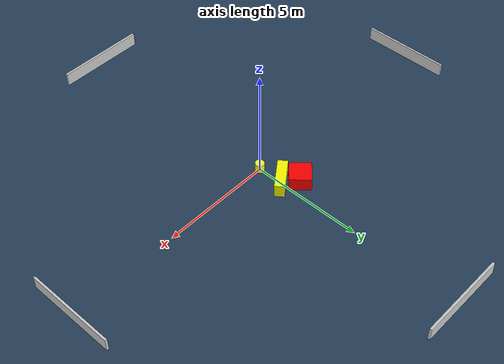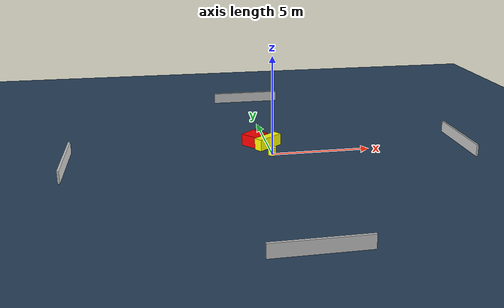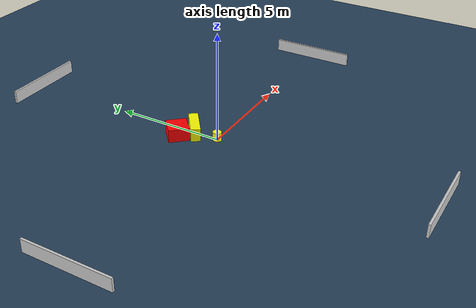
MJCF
<?xml version="1.0" ?>
<mujoco model="generated_environment">
  <option timestep="0.01" integrator="RK4" cone="elliptic"/>
  <default>
    <geom density="1"/>
  </default>
  <asset>
    <texture builtin="gradient" height="3072" name="skybox" rgb1="0.3 0.5 0.7" rgb2="0 0 0" type="skybox" width="512"/>
    <texture builtin="checker" height="300" name="groundplane" rgb1="0.2 0.3 0.4" rgb2="0.1 0.2 0.3" type="2d" width="300"/>
    <material name="groundplane" reflectance="0.2" texrepeat="5 5" texture="groundplane"/>
  </asset>
  <worldbody>
    <light dir="0 0 -1" directional="true" pos="0 0 1.5"/>
    <geom condim="3" friction="0.5 0.005 0.001" material="groundplane" name="floor" pos="0 0 0" size="0 0 0.05" type="plane"/>
    <body name="walls">
      <geom name="wall_1" condim="4" pos="-10.0 0.0 0.3" rgba="0.800000011920929 0.800000011920929 0.800000011920929 1.0" size="0.05 2.0 0.3" type="box"/>
      <geom name="wall_2" condim="4" pos="10.0 0.0 0.3" rgba="0.800000011920929 0.800000011920929 0.800000011920929 1.0" size="0.05 2.0 0.3" type="box"/>
      <geom name="wall_3" condim="4" pos="0.0 -10.0 0.3" rgba="0.800000011920929 0.800000011920929 0.800000011920929 1.0" size="2.0 0.05 0.3" type="box"/>
      <geom name="wall_4" condim="4" pos="0.0 10.0 0.3" rgba="0.800000011920929 0.800000011920929 0.800000011920929 1.0" size="2.0 0.05 0.3" type="box"/>
    </body>
    <body name="robot">
      <joint name="joint_x" type="slide" pos="0 0 0" axis="1 0 0"/>
      <joint name="joint_y" type="slide" pos="0 0 0" axis="0 1 0"/>
      <geom name="robot" type="cylinder" pos="0.0 0.0 0.2" size="0.2 0.2 0.0" mass="5.0" friction="1.0 0.005 0.0001" condim="4" rgba="1.0 1.0 0.0 1.0"/>
    </body>
    <body name="obstacle_1_movable">
      <geom name="obstacle_1_movable" condim="4" pos="-0.021787431989463243 1.1649057292073872 0.3" euler="0 0 126.60816469700437" friction="0.0 0.005 0.001" rgba="1.0 1.0 0.0 1.0" size="0.2186083323550341 0.7322154410320081 0.3" type="box" mass="0.1"/>
      <joint type="free"/>
    </body>
    <body name="obstacle_2_static">
      <geom name="obstacle_2_static" condim="4" pos="-0.6353508671241513 1.6586911483291948 0.3" euler="0 0 42.105281529362564" friction="0.0 0.005 0.001" rgba="1.0 0.0 0.0 1.0" size="0.47808376690758253 0.47274612813619327 0.3" type="box"/>
    </body>
  </worldbody>
  <actuator>
    <motor name="actuator_x" joint="joint_x" gear="1" ctrlrange="-1 1"/>
    <motor name="actuator_y" joint="joint_y" gear="1" ctrlrange="-1 1"/>
  </actuator>
</mujoco>
